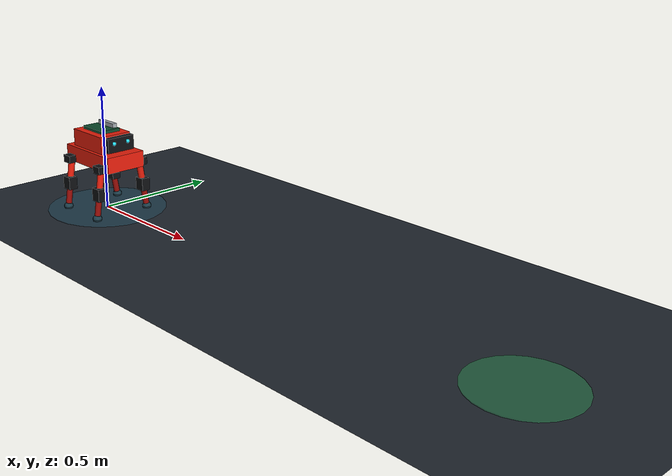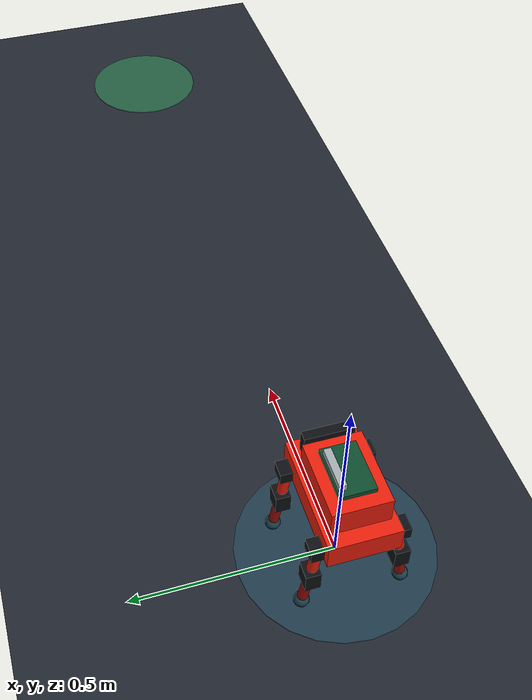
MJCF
<mujoco model="molty_reference_quadruped">
  <compiler angle="radian" autolimits="true" balanceinertia="true"/>
  <option timestep="0.002" integrator="implicitfast" cone="elliptic"
          iterations="20" ls_iterations="5"/>

  <visual>
    <headlight ambient="0.25 0.25 0.25" diffuse="0.75 0.75 0.75" specular="0.2 0.2 0.2"/>
    <rgba haze="0.12 0.16 0.2 1"/>
    <global azimuth="135" elevation="-22"/>
  </visual>

  <default>
    <joint type="hinge" axis="0 1 0" damping="0.08" armature="0.003"
           limited="true" range="-1.4 1.4"/>
    <geom condim="4" friction="0.9 0.01 0.0002" solref="0.008 1" solimp="0.9 0.95 0.002"/>
    <position kp="5.0" kv="0.15" ctrllimited="true" ctrlrange="-1.4 1.4"
              forcelimited="true" forcerange="-0.90 0.90"/>
  </default>

  <asset>
    <texture name="floor_texture" type="2d" builtin="checker" width="512" height="512"
             rgb1="0.10 0.12 0.15" rgb2="0.16 0.19 0.23"/>
    <material name="floor_material" texture="floor_texture" texrepeat="10 10" reflectance="0.12"/>
    <material name="shell_material" rgba="0.92 0.12 0.045 1"/>
    <material name="shell_dark_material" rgba="0.60 0.045 0.025 1"/>
    <material name="servo_material" rgba="0.055 0.06 0.07 1"/>
    <material name="board_material" rgba="0.05 0.30 0.18 1"/>
    <material name="metal_material" rgba="0.65 0.68 0.70 1"/>
    <material name="eye_material" rgba="0.15 0.9 1 1" emission="0.5"/>
    <material name="foot_material" rgba="0.10 0.11 0.12 1"/>
  </asset>

  <worldbody>
    <light pos="0 0 3" dir="0 0 -1" directional="true" castshadow="true"/>
    <light pos="-2 -2 2" dir="1 1 -1" diffuse="0.35 0.35 0.35"/>
    <geom name="floor" type="plane" size="6 6 0.1" material="floor_material"/>

    <site name="start_marker" type="cylinder" pos="0 0 0.002" size="0.24 0.002"
          rgba="0.15 0.55 0.7 0.22"/>
    <site name="goal_marker" type="cylinder" pos="2 0 0.002" size="0.18 0.002"
          rgba="0.2 0.95 0.45 0.28"/>

    <body name="torso" pos="0 0 0.222">
      <freejoint name="root"/>

      <geom name="lower_shell" type="box" size="0.145 0.085 0.032" mass="0.30"
            material="shell_material"/>
      <geom name="upper_shell" type="box" pos="-0.015 0 0.065" size="0.095 0.07 0.035"
            mass="0.08" material="shell_material"/>
      <geom name="pi_board" type="box" pos="-0.015 0 0.108" size="0.065 0.043 0.006"
            mass="0.012" material="board_material"/>
      <geom name="pin_header" type="box" pos="-0.015 0.03 0.122" size="0.05 0.009 0.009"
            mass="0.002" material="metal_material"/>
      <geom name="face" type="box" pos="0.105 0 0.069" size="0.012 0.06 0.029"
            mass="0.01" material="servo_material"/>
      <geom name="left_eye" type="sphere" pos="0.118 0.032 0.076" size="0.008"
            mass="0.0005" material="eye_material" contype="0" conaffinity="0"/>
      <geom name="right_eye" type="sphere" pos="0.118 -0.032 0.076" size="0.008"
            mass="0.0005" material="eye_material" contype="0" conaffinity="0"/>
      <site name="imu" type="box" pos="0 0 0.09" size="0.012 0.012 0.006"
            rgba="0.2 0.8 0.3 1"/>

      <!-- Front-left leg: hip servo + knee servo. -->
      <body name="front_left_hip" pos="0.105 0.09 -0.018">
        <joint name="front_left_hip_joint"/>
        <geom name="front_left_hip_servo" type="box" size="0.021 0.025 0.015"
              mass="0.009" material="servo_material"/>
        <geom name="front_left_upper" type="capsule" fromto="0 0 0  0 0.015 -0.10"
              size="0.013" mass="0.014" material="shell_material"/>
        <body name="front_left_knee" pos="0 0.015 -0.10">
          <joint name="front_left_knee_joint"/>
          <geom name="front_left_knee_servo" type="box" size="0.022 0.018 0.026"
                mass="0.009" material="servo_material"/>
          <geom name="front_left_lower" type="capsule" fromto="0 0 0  0 0.015 -0.10"
                size="0.012" mass="0.012" material="shell_dark_material"/>
          <geom name="front_left_foot" type="sphere" pos="0 0.015 -0.10" size="0.018"
                mass="0.005" material="foot_material" friction="1.2 0.01 0.0002"/>
          <site name="front_left_foot_site" type="sphere" pos="0 0.015 -0.10" size="0.019"
                rgba="0.2 0.8 1 0.18"/>
        </body>
      </body>

      <!-- Front-right leg. -->
      <body name="front_right_hip" pos="0.105 -0.09 -0.018">
        <joint name="front_right_hip_joint"/>
        <geom name="front_right_hip_servo" type="box" size="0.021 0.025 0.015"
              mass="0.009" material="servo_material"/>
        <geom name="front_right_upper" type="capsule" fromto="0 0 0  0 -0.015 -0.10"
              size="0.013" mass="0.014" material="shell_material"/>
        <body name="front_right_knee" pos="0 -0.015 -0.10">
          <joint name="front_right_knee_joint"/>
          <geom name="front_right_knee_servo" type="box" size="0.022 0.018 0.026"
                mass="0.009" material="servo_material"/>
          <geom name="front_right_lower" type="capsule" fromto="0 0 0  0 -0.015 -0.10"
                size="0.012" mass="0.012" material="shell_dark_material"/>
          <geom name="front_right_foot" type="sphere" pos="0 -0.015 -0.10" size="0.018"
                mass="0.005" material="foot_material" friction="1.2 0.01 0.0002"/>
          <site name="front_right_foot_site" type="sphere" pos="0 -0.015 -0.10" size="0.019"
                rgba="0.2 0.8 1 0.18"/>
        </body>
      </body>

      <!-- Rear-left leg. -->
      <body name="rear_left_hip" pos="-0.105 0.09 -0.018">
        <joint name="rear_left_hip_joint"/>
        <geom name="rear_left_hip_servo" type="box" size="0.021 0.025 0.015"
              mass="0.009" material="servo_material"/>
        <geom name="rear_left_upper" type="capsule" fromto="0 0 0  0 0.015 -0.10"
              size="0.013" mass="0.014" material="shell_material"/>
        <body name="rear_left_knee" pos="0 0.015 -0.10">
          <joint name="rear_left_knee_joint"/>
          <geom name="rear_left_knee_servo" type="box" size="0.022 0.018 0.026"
                mass="0.009" material="servo_material"/>
          <geom name="rear_left_lower" type="capsule" fromto="0 0 0  0 0.015 -0.10"
                size="0.012" mass="0.012" material="shell_dark_material"/>
          <geom name="rear_left_foot" type="sphere" pos="0 0.015 -0.10" size="0.018"
                mass="0.005" material="foot_material" friction="1.2 0.01 0.0002"/>
          <site name="rear_left_foot_site" type="sphere" pos="0 0.015 -0.10" size="0.019"
                rgba="0.2 0.8 1 0.18"/>
        </body>
      </body>

      <!-- Rear-right leg. -->
      <body name="rear_right_hip" pos="-0.105 -0.09 -0.018">
        <joint name="rear_right_hip_joint"/>
        <geom name="rear_right_hip_servo" type="box" size="0.021 0.025 0.015"
              mass="0.009" material="servo_material"/>
        <geom name="rear_right_upper" type="capsule" fromto="0 0 0  0 -0.015 -0.10"
              size="0.013" mass="0.014" material="shell_material"/>
        <body name="rear_right_knee" pos="0 -0.015 -0.10">
          <joint name="rear_right_knee_joint"/>
          <geom name="rear_right_knee_servo" type="box" size="0.022 0.018 0.026"
                mass="0.009" material="servo_material"/>
          <geom name="rear_right_lower" type="capsule" fromto="0 0 0  0 -0.015 -0.10"
                size="0.012" mass="0.012" material="shell_dark_material"/>
          <geom name="rear_right_foot" type="sphere" pos="0 -0.015 -0.10" size="0.018"
                mass="0.005" material="foot_material" friction="1.2 0.01 0.0002"/>
          <site name="rear_right_foot_site" type="sphere" pos="0 -0.015 -0.10" size="0.019"
                rgba="0.2 0.8 1 0.18"/>
        </body>
      </body>
    </body>
  </worldbody>

  <actuator>
    <position name="front_left_hip_servo" joint="front_left_hip_joint"/>
    <position name="front_left_knee_servo" joint="front_left_knee_joint"/>
    <position name="front_right_hip_servo" joint="front_right_hip_joint"/>
    <position name="front_right_knee_servo" joint="front_right_knee_joint"/>
    <position name="rear_left_hip_servo" joint="rear_left_hip_joint"/>
    <position name="rear_left_knee_servo" joint="rear_left_knee_joint"/>
    <position name="rear_right_hip_servo" joint="rear_right_hip_joint"/>
    <position name="rear_right_knee_servo" joint="rear_right_knee_joint"/>
  </actuator>

  <sensor>
    <gyro name="imu_gyro" site="imu"/>
    <accelerometer name="imu_accelerometer" site="imu"/>
    <velocimeter name="imu_velocity" site="imu"/>
    <framequat name="torso_orientation" objtype="body" objname="torso"/>

    <jointpos name="front_left_hip_position" joint="front_left_hip_joint"/>
    <jointpos name="front_left_knee_position" joint="front_left_knee_joint"/>
    <jointpos name="front_right_hip_position" joint="front_right_hip_joint"/>
    <jointpos name="front_right_knee_position" joint="front_right_knee_joint"/>
    <jointpos name="rear_left_hip_position" joint="rear_left_hip_joint"/>
    <jointpos name="rear_left_knee_position" joint="rear_left_knee_joint"/>
    <jointpos name="rear_right_hip_position" joint="rear_right_hip_joint"/>
    <jointpos name="rear_right_knee_position" joint="rear_right_knee_joint"/>

    <jointvel name="front_left_hip_velocity" joint="front_left_hip_joint"/>
    <jointvel name="front_left_knee_velocity" joint="front_left_knee_joint"/>
    <jointvel name="front_right_hip_velocity" joint="front_right_hip_joint"/>
    <jointvel name="front_right_knee_velocity" joint="front_right_knee_joint"/>
    <jointvel name="rear_left_hip_velocity" joint="rear_left_hip_joint"/>
    <jointvel name="rear_left_knee_velocity" joint="rear_left_knee_joint"/>
    <jointvel name="rear_right_hip_velocity" joint="rear_right_hip_joint"/>
    <jointvel name="rear_right_knee_velocity" joint="rear_right_knee_joint"/>

    <touch name="front_left_foot_contact" site="front_left_foot_site"/>
    <touch name="front_right_foot_contact" site="front_right_foot_site"/>
    <touch name="rear_left_foot_contact" site="rear_left_foot_site"/>
    <touch name="rear_right_foot_contact" site="rear_right_foot_site"/>
  </sensor>

  <keyframe>
    <key name="home"
         qpos="0 0 0.222  1 0 0 0  -0.4 0.8  -0.4 0.8  -0.4 0.8  -0.4 0.8"
         ctrl="-0.4 0.8  -0.4 0.8  -0.4 0.8  -0.4 0.8"/>
  </keyframe>
</mujoco>
